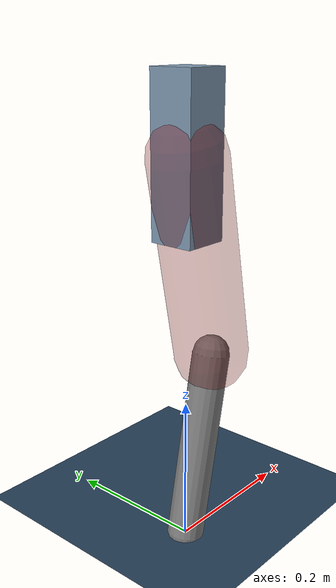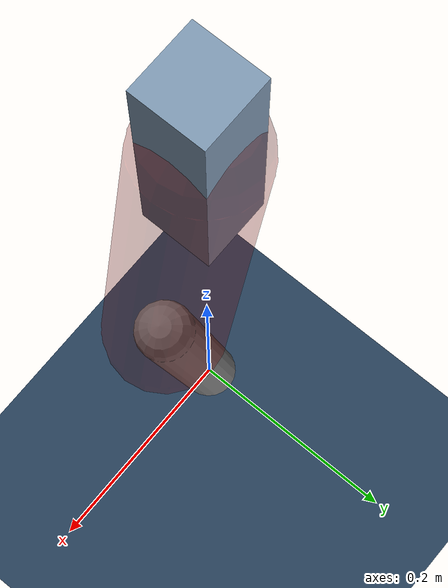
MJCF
<mujoco model="Hopper2D">
	<compiler inertiafromgeom="true" angle="radian" />
	<option timestep="0.001" integrator="implicit" cone="elliptic" solver="Newton" tolerance="1e-10" />

	<default>
		<geom contype="1" conaffinity="1" condim="3" friction="2 0.005 0.0001" solref="0.005 1" />
		<joint limited="true" damping="0.1" />
	</default>

	<asset>
		<texture name="skybox" type="skybox" builtin="gradient" rgb1=".4 .6 .8" rgb2="0 0 0" width="800" height="800" />
		<texture name="grid" type="2d" builtin="checker" rgb1=".1 .2 .3" rgb2=".2 .3 .4" width="300" height="300" mark="edge" markrgb=".2 .3 .4" />
		<material name="ground" texture="grid" texrepeat="1 1" texuniform="true" reflectance="0.1" />
		<material name="leg" rgba="0.5 0.6 0.7 1" />
	</asset>

	<worldbody>

		<geom name="floor" type="plane" size="5 5 0.25" material="ground" />

		<light directional="false" diffuse="0.8 0.8 0.8" specular="0.3 0.3 0.3" pos="0 0 2" dir="0 0 -1" />
		<light mode="targetbodycom" target="base" directional="false" diffuse="0.8 0.8 0.8" specular="0.3 0.3 0.3" pos="0 0 2" dir="0 0 -1" />

		<camera name="fixed" pos="0 -2 1" xyaxes="1 0 0 0 0 1" />
		<camera name="tracking" mode="trackcom" pos="0 -3 1" />

		<body name="root" pos="0 0 0.5187625097126677">
			<joint name="slide_x" type="slide" axis="1 0 0" range="-100 100" />
			<joint name="slide_z" type="slide" axis="0 0 1" range="0 10" />

			<body name="base" pos="0 0 0">
				<geom name="torso" type="box" size="0.03 0.03 0.1" mass="2.599" material="leg" />

				<body name="link1" pos="0 0 0" euler="0 1.3780570407778925 0">
					<joint type="hinge" axis="0 -1 0" pos="0 0 0" name="hinge1" limited="true" range="-3.14 3.14" stiffness="0" damping="0.1" />
					<geom name="thigh" type="capsule" fromto="0 0 0 0.2671465130328452 0 0" size="0.05" rgba="0.5 0 0 0.3" mass="0.9011809338853976" />

					<body name="link2" pos="0.2671465130328452 0 0" euler="0 0.3896059354080259 0">
						<joint type="hinge" axis="0 -1 0" pos="0 0 0" name="hinge2" limited="true" range="-3.14 3.14" stiffness="0" damping="0.1" />
						<geom name="shank" type="capsule" fromto="0 0 0 0.2616159966798225 0 0" size="0.025" mass="0.452092797343858" />

					</body>
				</body>
			</body>
		</body>
	</worldbody>

	<actuator>
		<motor name="torque1" joint="hinge1" ctrlrange="-64.95286987905334 64.95286987905334" ctrllimited="true" gear="1" />
		<motor name="torque2" joint="hinge2" ctrlrange="-49.2995028220402 49.2995028220402" ctrllimited="true" gear="1" />
	</actuator>
</mujoco>
